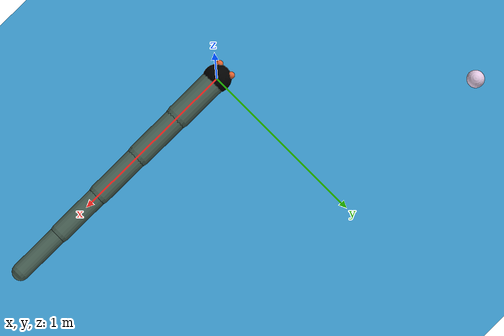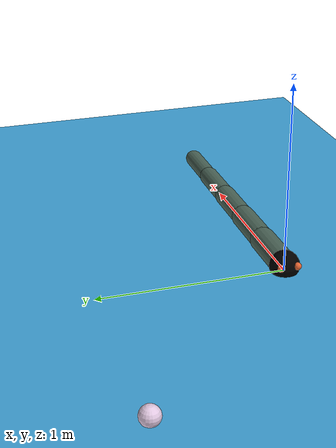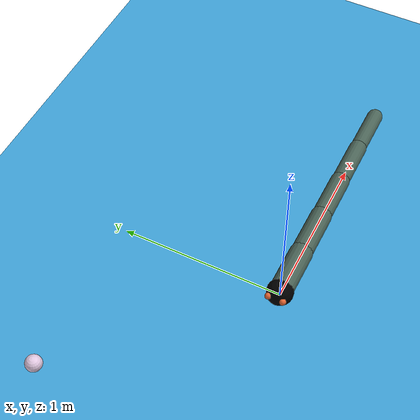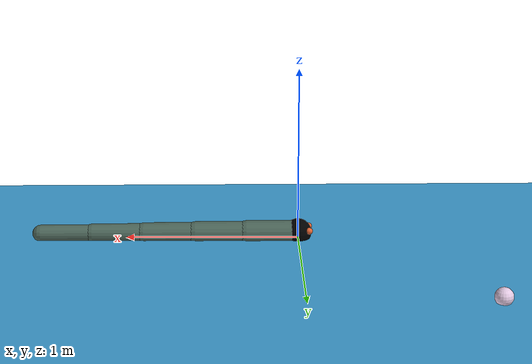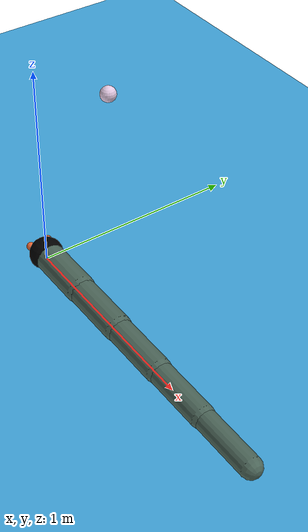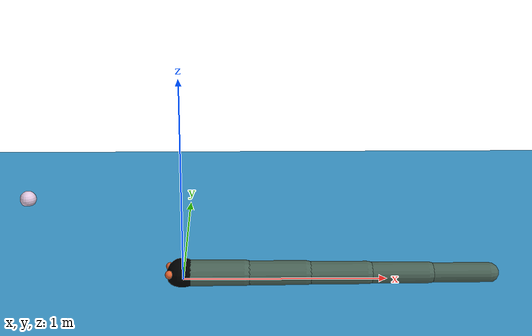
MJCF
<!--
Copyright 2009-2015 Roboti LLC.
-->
<mujoco model="swimmer (v1.31)">
	<compiler inertiafromgeom="true" angle="radian"/>
	<default>
		<joint limited="true" range="-1.5 1.5"/>
		<motor ctrllimited="true" ctrlrange="-10 10"/>
		<default class="body">
			<geom contype="1" conaffinity="1" friction="1 0.1 0.1" material="MatBody"/>
		</default>
	</default>

	<!--Viscosity:: water:0.000894, air:0.00001983 -->
	<!--Density:: water:1000, air:1.2 -->
	<option timestep="0.001" viscosity="0.000894" density="1000" tolerance="0">
  </option>

	<asset>
		<texture type="skybox" builtin="gradient" rgb1="0.35 0.64 0.85" rgb2="0.25 0.64 0.85" width="100" height="100"/>
		<texture name="groundplane" type="2d" builtin="gradient" random=".08" rgb1="0.25 0.64 0.85" rgb2="0.2 0.6 0.85" width="200" height="10" mark="random" markrgb=".8 .8 .8"/>

		<material name="MatBody" specular="3" shininess=".5" reflectance="1" rgba=".3 .4 .35 1"/>
		<material name="MatGnd" texture="groundplane" texrepeat="3 1" specular="1" shininess="1" reflectance="0.00001"/>
	</asset>

	<worldbody>
		<light directional="true" cutoff="100" exponent="1" diffuse="1 1 1" specular=".1 .1 .1" pos="0 0 1.3" dir="-0 0 -1.3"/>
		<geom name="ground" material="MatGnd" type="plane" pos="0 0 0" size="10 10 1" contype="0" conaffinity="0" rgba="0.25 0.64 0.85 .2"/>
		<site name="target" type="sphere" rgba=".9 .8 .9 1" size="0.05" pos="-1 1 .03"/>

		<body pos="0 0 0.03" childclass="body">
			<site name="eyeL" type="sphere" size="0.02" pos="-.065 -.045 .02" rgba=".9 .4 .2 1"/>
			<site name="eyer" type="sphere" size="0.02" pos="-.065 0.045 .02" rgba=".9 .4 .2 1"/>
			<site name="head" material="MatBody" type="sphere" size="0.08" pos="0 0 0" rgba="0 0 0 1"/>
			<inertial pos="0.15 0 0" quat="0.707 0 -0.707 0" mass="2.749" diaginertia="0.03 0.03 0.001"/>
			<joint name="rootx" type="slide" pos="0 0 0" axis="1 0 0" limited="false"/>
			<joint name="rooty" type="slide" pos="0 0 0" axis="0 1 0" limited="false"/>
			<joint name="roota" type="hinge" pos="0 0 0" axis="0 0 1" limited="false"/>
			<geom type="capsule" pos="0.15 0 0" quat="0.707 0 -0.707 0" size="0.07 0.15" />
			<body pos="0.3 0 0">
				<inertial pos="0.15 0 0" quat="0.707 0 -0.707 0" mass="2.749" diaginertia="0.03 0.03 0.001"/>
				<joint name="j1" type="hinge" pos="0 0 0" axis="0 0 1"/>
				<geom type="capsule" pos="0.15 0 0" quat="0.707 0 -0.707 0" size="0.065 0.15" />
				<site name='s1' type="capsule" pos="0.15 0 0" quat="0.707 0 -0.707 0" size="0.065 0.15" />
				<body pos="0.3 0 0">
					<inertial pos="0.15 0 0" quat="0.707 0 -0.707 0" mass="2.749" diaginertia="0.03 0.03 0.001"/>
					<joint name="j2" type="hinge" pos="0 0 0" axis="0 0 1"/>
					<geom type="capsule" pos="0.15 0 0" quat="0.707 0 -0.707 0" size="0.06 0.15" />
					<site name='s2' type="capsule" pos="0.15 0 0" quat="0.707 0 -0.707 0" size="0.06 0.15" />
					<body pos="0.3 0 0">
						<inertial pos="0.15 0 0" quat="0.707 0 -0.707 0" mass="2.749" diaginertia="0.03 0.03 0.001"/>
						<joint name="j3" type="hinge" pos="0 0 0" axis="0 0 1"/>
						<geom type="capsule" pos="0.15 0 0" quat="0.707 0 -0.707 0" size="0.055 0.15" />
						<site name='s3' type="capsule" pos="0.15 0 0" quat="0.707 0 -0.707 0" size="0.055 0.15" />
						<body pos="0.3 0 0">
							<inertial pos="0.15 0 0" quat="0.707 0 -0.707 0" mass="2.749" diaginertia="0.03 0.03 0.001"/>
							<joint name="j4" type="hinge" pos="0 0 0" axis="0 0 1"/>
							<geom type="capsule" pos="0.15 0 0" quat="0.707 0 -0.707 0" size="0.05 0.15" />
							<site name='s4' type="capsule" pos="0.15 0 0" quat="0.707 0 -0.707 0" size="0.05 0.15" />
						</body>
					</body>
				</body>
			</body>
		</body>
	</worldbody>

    <sensor>
      <sitepos name="mocap0"       site="head" />
      <sitequat name="mocapq"       site="head" />

      <jointpos joint="j1" />
      <jointpos joint="j2" />
      <jointpos joint="j3" />
      <jointpos joint="j4" />

      <jointvel joint="j1" />
      <jointvel joint="j2" />
      <jointvel joint="j3" />
      <jointvel joint="j4" />

      <accelerometer name="accel" site="head" />
      <gyro name="gyro"           site="head" />
      <force  name="force"        site="head" />
    </sensor>

	<actuator>
		<motor joint="j1" gear="10"/>
		<motor joint="j2" gear="10"/>
		<motor joint="j3" gear="10"/>
		<motor joint="j4" gear="10"/>
	</actuator>

</mujoco>
